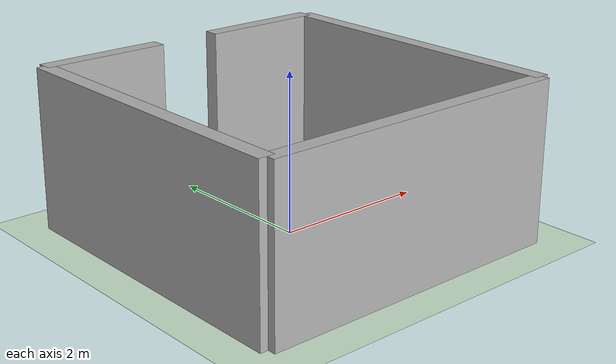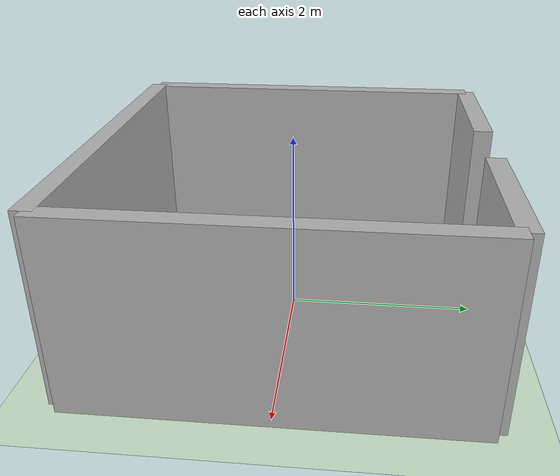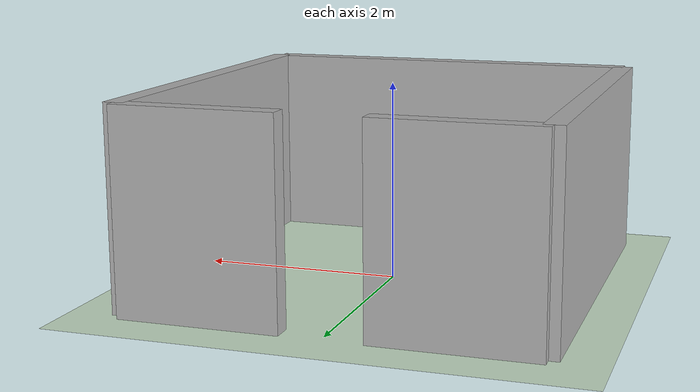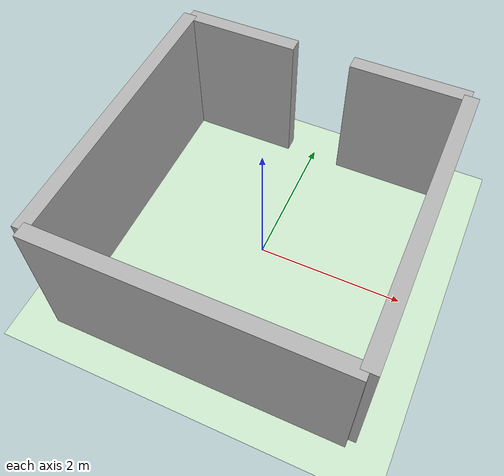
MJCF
<?xml version="1.0"?>
<mujoco model="humanoid_scene">

  <worldbody>

    <!-- ================= Ground ================= -->
    <!-- Infinite plane as ground -->
    <geom name="ground"
          type="plane"
          size="5 5 0.1"
          rgba="0.8 0.9 0.8 1"
          contype="1"
          conaffinity="1"/>

    <!-- ================= Walls (static, no joints => infinite mass) ================= -->
    <body name="walls">

      <!-- Left wall -->
      <geom name="wall_left"
            type="box"
            size="0.1 2 1"
            pos="-2 0 1"
            rgba="0.7 0.7 0.7 1"
            contype="1"
            conaffinity="1"/>

      <!-- Right wall -->
      <geom name="wall_right"
            type="box"
            size="0.1 2 1"
            pos="2 0 1"
            rgba="0.7 0.7 0.7 1"
            contype="1"
            conaffinity="1"/>

      <!-- Back wall -->
      <geom name="wall_back"
            type="box"
            size="2 0.1 1"
            pos="0 -2 1"
            rgba="0.7 0.7 0.7 1"
            contype="1"
            conaffinity="1"/>

      <!-- Front wall split into two parts to create a door opening -->

      <!-- Front wall (left segment) -->
      <geom name="wall_front_left"
            type="box"
            size="0.8 0.1 1"
            pos="-1.2 2 1"
            rgba="0.7 0.7 0.7 1"
            contype="1"
            conaffinity="1"/>

      <!-- Front wall (right segment) -->
      <geom name="wall_front_right"
            type="box"
            size="0.8 0.1 1"
            pos="1.2 2 1"
            rgba="0.7 0.7 0.7 1"
            contype="1"
            conaffinity="1"/>

      <!-- Optional top beam above the door -->

    </body>

  </worldbody>

</mujoco>
